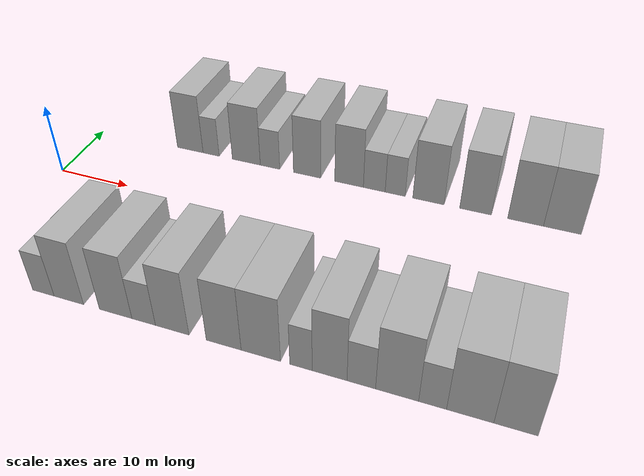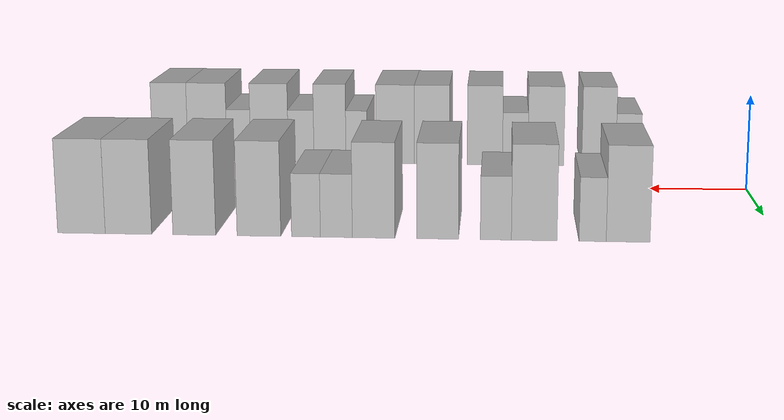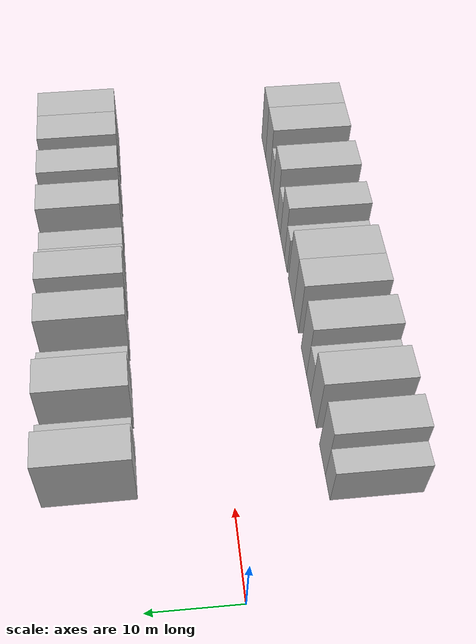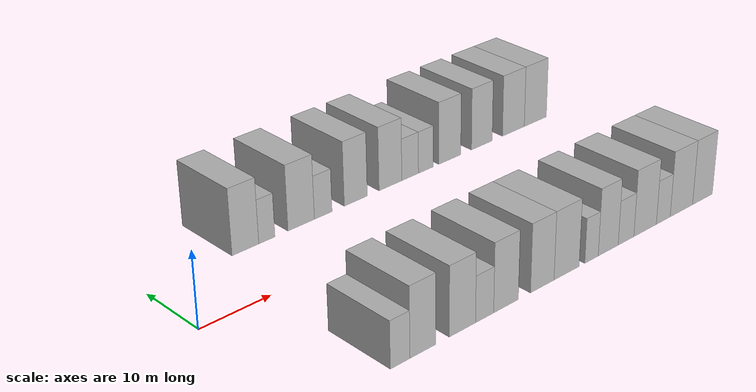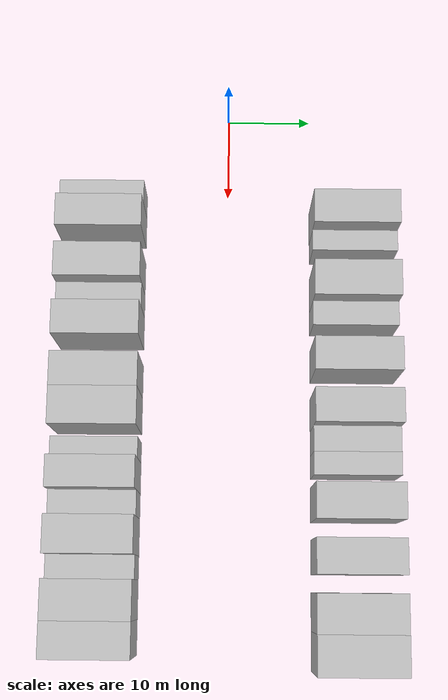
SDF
<sdf version="1.6">
 <world name="default">
  <model name="building_1">
   <static>1</static>
   <pose>13.9863 15.0000 0 0.000000 0.000000 1.570796</pose>
   <link name="link">
    <pose>0 0 4.50 0 0 0</pose>
    <collision name="collision"><geometry><box><size>10.0000 3.9726 9.0000</size></box></geometry></collision>
    <visual name="visual">
     <cast_shadows>0</cast_shadows>
     <geometry><box><size>10.0000 3.9726 9.0000</size></box></geometry>
     <material>
      <script>
       <uri>model://HANNAS_wall/materials/scripts</uri>
       <uri>model://HANNAS_wall/materials/textures</uri>
       <name>vrc/HANNAS_wall</name>
      </script>
     </material>
    </visual>
   </link>
  </model>
  <model name="building_2">
   <static>1</static>
   <pose>17.2035 15.0000 0 0.000000 0.000000 1.570796</pose>
   <link name="link">
    <pose>0 0 3.00 0 0 0</pose>
    <collision name="collision"><geometry><box><size>10.0000 2.4617 6.0000</size></box></geometry></collision>
    <visual name="visual">
     <cast_shadows>0</cast_shadows>
     <geometry><box><size>10.0000 2.4617 6.0000</size></box></geometry>
     <material>
      <script>
       <uri>model://HANNAS_wall/materials/scripts</uri>
       <uri>model://HANNAS_wall/materials/textures</uri>
       <name>vrc/HANNAS_wall</name>
      </script>
     </material>
    </visual>
   </link>
  </model>
  <model name="building_3">
   <static>1</static>
   <pose>22.5151 15.0000 0 0.000000 0.000000 1.570796</pose>
   <link name="link">
    <pose>0 0 4.50 0 0 0</pose>
    <collision name="collision"><geometry><box><size>10.0000 4.1615 9.0000</size></box></geometry></collision>
    <visual name="visual">
     <cast_shadows>0</cast_shadows>
     <geometry><box><size>10.0000 4.1615 9.0000</size></box></geometry>
     <material>
      <script>
       <uri>model://HANNAS_wall/materials/scripts</uri>
       <uri>model://HANNAS_wall/materials/textures</uri>
       <name>vrc/HANNAS_wall</name>
      </script>
     </material>
    </visual>
   </link>
  </model>
  <model name="building_4">
   <static>1</static>
   <pose>26.0151 15.0000 0 0.000000 0.000000 1.570796</pose>
   <link name="link">
    <pose>0 0 3.00 0 0 0</pose>
    <collision name="collision"><geometry><box><size>10.0000 2.8385 6.0000</size></box></geometry></collision>
    <visual name="visual">
     <cast_shadows>0</cast_shadows>
     <geometry><box><size>10.0000 2.8385 6.0000</size></box></geometry>
     <material>
      <script>
       <uri>model://HANNAS_wall/materials/scripts</uri>
       <uri>model://HANNAS_wall/materials/textures</uri>
       <name>vrc/HANNAS_wall</name>
      </script>
     </material>
    </visual>
   </link>
  </model>
  <model name="building_5">
   <static>1</static>
   <pose>31.3539 15.0000 0 0.000000 0.000000 1.570796</pose>
   <link name="link">
    <pose>0 0 4.50 0 0 0</pose>
    <collision name="collision"><geometry><box><size>10.0000 3.8392 9.0000</size></box></geometry></collision>
    <visual name="visual">
     <cast_shadows>0</cast_shadows>
     <geometry><box><size>10.0000 3.8392 9.0000</size></box></geometry>
     <material>
      <script>
       <uri>model://HANNAS_wall/materials/scripts</uri>
       <uri>model://HANNAS_wall/materials/textures</uri>
       <name>vrc/HANNAS_wall</name>
      </script>
     </material>
    </visual>
   </link>
  </model>
  <model name="building_6">
   <static>1</static>
   <pose>37.2430 15.0000 0 0.000000 0.000000 1.570796</pose>
   <link name="link">
    <pose>0 0 4.50 0 0 0</pose>
    <collision name="collision"><geometry><box><size>10.0000 3.9389 9.0000</size></box></geometry></collision>
    <visual name="visual">
     <cast_shadows>0</cast_shadows>
     <geometry><box><size>10.0000 3.9389 9.0000</size></box></geometry>
     <material>
      <script>
       <uri>model://HANNAS_wall/materials/scripts</uri>
       <uri>model://HANNAS_wall/materials/textures</uri>
       <name>vrc/HANNAS_wall</name>
      </script>
     </material>
    </visual>
   </link>
  </model>
  <model name="building_7">
   <static>1</static>
   <pose>40.6891 15.0000 0 0.000000 0.000000 1.570796</pose>
   <link name="link">
    <pose>0 0 3.00 0 0 0</pose>
    <collision name="collision"><geometry><box><size>10.0000 2.9532 6.0000</size></box></geometry></collision>
    <visual name="visual">
     <cast_shadows>0</cast_shadows>
     <geometry><box><size>10.0000 2.9532 6.0000</size></box></geometry>
     <material>
      <script>
       <uri>model://HANNAS_wall/materials/scripts</uri>
       <uri>model://HANNAS_wall/materials/textures</uri>
       <name>vrc/HANNAS_wall</name>
      </script>
     </material>
    </visual>
   </link>
  </model>
  <model name="building_8">
   <static>1</static>
   <pose>43.5024 15.0000 0 0.000000 0.000000 1.570796</pose>
   <link name="link">
    <pose>0 0 3.00 0 0 0</pose>
    <collision name="collision"><geometry><box><size>10.0000 2.6734 6.0000</size></box></geometry></collision>
    <visual name="visual">
     <cast_shadows>0</cast_shadows>
     <geometry><box><size>10.0000 2.6734 6.0000</size></box></geometry>
     <material>
      <script>
       <uri>model://HANNAS_wall/materials/scripts</uri>
       <uri>model://HANNAS_wall/materials/textures</uri>
       <name>vrc/HANNAS_wall</name>
      </script>
     </material>
    </visual>
   </link>
  </model>
  <model name="building_9">
   <static>1</static>
   <pose>47.8759 15.0000 0 0.000000 0.000000 1.570796</pose>
   <link name="link">
    <pose>0 0 4.50 0 0 0</pose>
    <collision name="collision"><geometry><box><size>10.0000 4.0736 9.0000</size></box></geometry></collision>
    <visual name="visual">
     <cast_shadows>0</cast_shadows>
     <geometry><box><size>10.0000 4.0736 9.0000</size></box></geometry>
     <material>
      <script>
       <uri>model://HANNAS_wall/materials/scripts</uri>
       <uri>model://HANNAS_wall/materials/textures</uri>
       <name>vrc/HANNAS_wall</name>
      </script>
     </material>
    </visual>
   </link>
  </model>
  <model name="building_10">
   <static>1</static>
   <pose>53.9139 15.0000 0 0.000000 0.000000 1.570796</pose>
   <link name="link">
    <pose>0 0 4.50 0 0 0</pose>
    <collision name="collision"><geometry><box><size>10.0000 4.0025 9.0000</size></box></geometry></collision>
    <visual name="visual">
     <cast_shadows>0</cast_shadows>
     <geometry><box><size>10.0000 4.0025 9.0000</size></box></geometry>
     <material>
      <script>
       <uri>model://HANNAS_wall/materials/scripts</uri>
       <uri>model://HANNAS_wall/materials/textures</uri>
       <name>vrc/HANNAS_wall</name>
      </script>
     </material>
    </visual>
   </link>
  </model>
  <model name="building_11">
   <static>1</static>
   <pose>60.0964 15.0000 0 0.000000 0.000000 1.570796</pose>
   <link name="link">
    <pose>0 0 4.50 0 0 0</pose>
    <collision name="collision"><geometry><box><size>10.0000 4.3625 9.0000</size></box></geometry></collision>
    <visual name="visual">
     <cast_shadows>0</cast_shadows>
     <geometry><box><size>10.0000 4.3625 9.0000</size></box></geometry>
     <material>
      <script>
       <uri>model://HANNAS_wall/materials/scripts</uri>
       <uri>model://HANNAS_wall/materials/textures</uri>
       <name>vrc/HANNAS_wall</name>
      </script>
     </material>
    </visual>
   </link>
  </model>
  <model name="building_12">
   <static>1</static>
   <pose>64.5238 15.0000 0 0.000000 0.000000 1.570796</pose>
   <link name="link">
    <pose>0 0 4.50 0 0 0</pose>
    <collision name="collision"><geometry><box><size>10.0000 4.4922 9.0000</size></box></geometry></collision>
    <visual name="visual">
     <cast_shadows>0</cast_shadows>
     <geometry><box><size>10.0000 4.4922 9.0000</size></box></geometry>
     <material>
      <script>
       <uri>model://HANNAS_wall/materials/scripts</uri>
       <uri>model://HANNAS_wall/materials/textures</uri>
       <name>vrc/HANNAS_wall</name>
      </script>
     </material>
    </visual>
   </link>
  </model>
  <model name="building_52">
   <static>1</static>
   <pose>11.3973 -15.0000 0 0.000000 0.000000 1.570796</pose>
   <link name="link">
    <pose>0 0 3.00 0 0 0</pose>
    <collision name="collision"><geometry><box><size>10.0000 2.7946 6.0000</size></box></geometry></collision>
    <visual name="visual">
     <cast_shadows>0</cast_shadows>
     <geometry><box><size>10.0000 2.7946 6.0000</size></box></geometry>
     <material>
      <script>
       <uri>model://HANNAS_wall/materials/scripts</uri>
       <uri>model://HANNAS_wall/materials/textures</uri>
       <name>vrc/HANNAS_wall</name>
      </script>
     </material>
    </visual>
   </link>
  </model>
  <model name="building_53">
   <static>1</static>
   <pose>14.6870 -15.0000 0 0.000000 0.000000 1.570796</pose>
   <link name="link">
    <pose>0 0 4.50 0 0 0</pose>
    <collision name="collision"><geometry><box><size>10.0000 3.7847 9.0000</size></box></geometry></collision>
    <visual name="visual">
     <cast_shadows>0</cast_shadows>
     <geometry><box><size>10.0000 3.7847 9.0000</size></box></geometry>
     <material>
      <script>
       <uri>model://HANNAS_wall/materials/scripts</uri>
       <uri>model://HANNAS_wall/materials/textures</uri>
       <name>vrc/HANNAS_wall</name>
      </script>
     </material>
    </visual>
   </link>
  </model>
  <model name="building_54">
   <static>1</static>
   <pose>20.5842 -15.0000 0 0.000000 0.000000 1.570796</pose>
   <link name="link">
    <pose>0 0 4.50 0 0 0</pose>
    <collision name="collision"><geometry><box><size>10.0000 4.0096 9.0000</size></box></geometry></collision>
    <visual name="visual">
     <cast_shadows>0</cast_shadows>
     <geometry><box><size>10.0000 4.0096 9.0000</size></box></geometry>
     <material>
      <script>
       <uri>model://HANNAS_wall/materials/scripts</uri>
       <uri>model://HANNAS_wall/materials/textures</uri>
       <name>vrc/HANNAS_wall</name>
      </script>
     </material>
    </visual>
   </link>
  </model>
  <model name="building_55">
   <static>1</static>
   <pose>24.0114 -15.0000 0 0.000000 0.000000 1.570796</pose>
   <link name="link">
    <pose>0 0 3.00 0 0 0</pose>
    <collision name="collision"><geometry><box><size>10.0000 2.8448 6.0000</size></box></geometry></collision>
    <visual name="visual">
     <cast_shadows>0</cast_shadows>
     <geometry><box><size>10.0000 2.8448 6.0000</size></box></geometry>
     <material>
      <script>
       <uri>model://HANNAS_wall/materials/scripts</uri>
       <uri>model://HANNAS_wall/materials/textures</uri>
       <name>vrc/HANNAS_wall</name>
      </script>
     </material>
    </visual>
   </link>
  </model>
  <model name="building_56">
   <static>1</static>
   <pose>27.4137 -15.0000 0 0.000000 0.000000 1.570796</pose>
   <link name="link">
    <pose>0 0 4.50 0 0 0</pose>
    <collision name="collision"><geometry><box><size>10.0000 3.9599 9.0000</size></box></geometry></collision>
    <visual name="visual">
     <cast_shadows>0</cast_shadows>
     <geometry><box><size>10.0000 3.9599 9.0000</size></box></geometry>
     <material>
      <script>
       <uri>model://HANNAS_wall/materials/scripts</uri>
       <uri>model://HANNAS_wall/materials/textures</uri>
       <name>vrc/HANNAS_wall</name>
      </script>
     </material>
    </visual>
   </link>
  </model>
  <model name="building_57">
   <static>1</static>
   <pose>33.3716 -15.0000 0 0.000000 0.000000 1.570796</pose>
   <link name="link">
    <pose>0 0 4.50 0 0 0</pose>
    <collision name="collision"><geometry><box><size>10.0000 3.9559 9.0000</size></box></geometry></collision>
    <visual name="visual">
     <cast_shadows>0</cast_shadows>
     <geometry><box><size>10.0000 3.9559 9.0000</size></box></geometry>
     <material>
      <script>
       <uri>model://HANNAS_wall/materials/scripts</uri>
       <uri>model://HANNAS_wall/materials/textures</uri>
       <name>vrc/HANNAS_wall</name>
      </script>
     </material>
    </visual>
   </link>
  </model>
  <model name="building_58">
   <static>1</static>
   <pose>37.5189 -15.0000 0 0.000000 0.000000 1.570796</pose>
   <link name="link">
    <pose>0 0 4.50 0 0 0</pose>
    <collision name="collision"><geometry><box><size>10.0000 4.3388 9.0000</size></box></geometry></collision>
    <visual name="visual">
     <cast_shadows>0</cast_shadows>
     <geometry><box><size>10.0000 4.3388 9.0000</size></box></geometry>
     <material>
      <script>
       <uri>model://HANNAS_wall/materials/scripts</uri>
       <uri>model://HANNAS_wall/materials/textures</uri>
       <name>vrc/HANNAS_wall</name>
      </script>
     </material>
    </visual>
   </link>
  </model>
  <model name="building_59">
   <static>1</static>
   <pose>41.8885 -15.0000 0 0.000000 0.000000 1.570796</pose>
   <link name="link">
    <pose>0 0 3.00 0 0 0</pose>
    <collision name="collision"><geometry><box><size>10.0000 2.4004 6.0000</size></box></geometry></collision>
    <visual name="visual">
     <cast_shadows>0</cast_shadows>
     <geometry><box><size>10.0000 2.4004 6.0000</size></box></geometry>
     <material>
      <script>
       <uri>model://HANNAS_wall/materials/scripts</uri>
       <uri>model://HANNAS_wall/materials/textures</uri>
       <name>vrc/HANNAS_wall</name>
      </script>
     </material>
    </visual>
   </link>
  </model>
  <model name="building_60">
   <static>1</static>
   <pose>44.9065 -15.0000 0 0.000000 0.000000 1.570796</pose>
   <link name="link">
    <pose>0 0 4.50 0 0 0</pose>
    <collision name="collision"><geometry><box><size>10.0000 3.6356 9.0000</size></box></geometry></collision>
    <visual name="visual">
     <cast_shadows>0</cast_shadows>
     <geometry><box><size>10.0000 3.6356 9.0000</size></box></geometry>
     <material>
      <script>
       <uri>model://HANNAS_wall/materials/scripts</uri>
       <uri>model://HANNAS_wall/materials/textures</uri>
       <name>vrc/HANNAS_wall</name>
      </script>
     </material>
    </visual>
   </link>
  </model>
  <model name="building_61">
   <static>1</static>
   <pose>48.1842 -15.0000 0 0.000000 0.000000 1.570796</pose>
   <link name="link">
    <pose>0 0 3.00 0 0 0</pose>
    <collision name="collision"><geometry><box><size>10.0000 2.9200 6.0000</size></box></geometry></collision>
    <visual name="visual">
     <cast_shadows>0</cast_shadows>
     <geometry><box><size>10.0000 2.9200 6.0000</size></box></geometry>
     <material>
      <script>
       <uri>model://HANNAS_wall/materials/scripts</uri>
       <uri>model://HANNAS_wall/materials/textures</uri>
       <name>vrc/HANNAS_wall</name>
      </script>
     </material>
    </visual>
   </link>
  </model>
  <model name="building_62">
   <static>1</static>
   <pose>51.7884 -15.0000 0 0.000000 0.000000 1.570796</pose>
   <link name="link">
    <pose>0 0 4.50 0 0 0</pose>
    <collision name="collision"><geometry><box><size>10.0000 4.2884 9.0000</size></box></geometry></collision>
    <visual name="visual">
     <cast_shadows>0</cast_shadows>
     <geometry><box><size>10.0000 4.2884 9.0000</size></box></geometry>
     <material>
      <script>
       <uri>model://HANNAS_wall/materials/scripts</uri>
       <uri>model://HANNAS_wall/materials/textures</uri>
       <name>vrc/HANNAS_wall</name>
      </script>
     </material>
    </visual>
   </link>
  </model>
  <model name="building_63">
   <static>1</static>
   <pose>55.2880 -15.0000 0 0.000000 0.000000 1.570796</pose>
   <link name="link">
    <pose>0 0 3.00 0 0 0</pose>
    <collision name="collision"><geometry><box><size>10.0000 2.7107 6.0000</size></box></geometry></collision>
    <visual name="visual">
     <cast_shadows>0</cast_shadows>
     <geometry><box><size>10.0000 2.7107 6.0000</size></box></geometry>
     <material>
      <script>
       <uri>model://HANNAS_wall/materials/scripts</uri>
       <uri>model://HANNAS_wall/materials/textures</uri>
       <name>vrc/HANNAS_wall</name>
      </script>
     </material>
    </visual>
   </link>
  </model>
  <model name="building_64">
   <static>1</static>
   <pose>58.8782 -15.0000 0 0.000000 0.000000 1.570796</pose>
   <link name="link">
    <pose>0 0 4.50 0 0 0</pose>
    <collision name="collision"><geometry><box><size>10.0000 4.4697 9.0000</size></box></geometry></collision>
    <visual name="visual">
     <cast_shadows>0</cast_shadows>
     <geometry><box><size>10.0000 4.4697 9.0000</size></box></geometry>
     <material>
      <script>
       <uri>model://HANNAS_wall/materials/scripts</uri>
       <uri>model://HANNAS_wall/materials/textures</uri>
       <name>vrc/HANNAS_wall</name>
      </script>
     </material>
    </visual>
   </link>
  </model>
  <model name="building_65">
   <static>1</static>
   <pose>63.1442 -15.0000 0 0.000000 0.000000 1.570796</pose>
   <link name="link">
    <pose>0 0 4.50 0 0 0</pose>
    <collision name="collision"><geometry><box><size>10.0000 4.0622 9.0000</size></box></geometry></collision>
    <visual name="visual">
     <cast_shadows>0</cast_shadows>
     <geometry><box><size>10.0000 4.0622 9.0000</size></box></geometry>
     <material>
      <script>
       <uri>model://HANNAS_wall/materials/scripts</uri>
       <uri>model://HANNAS_wall/materials/textures</uri>
       <name>vrc/HANNAS_wall</name>
      </script>
     </material>
    </visual>
   </link>
  </model>
 </world>
</sdf>
